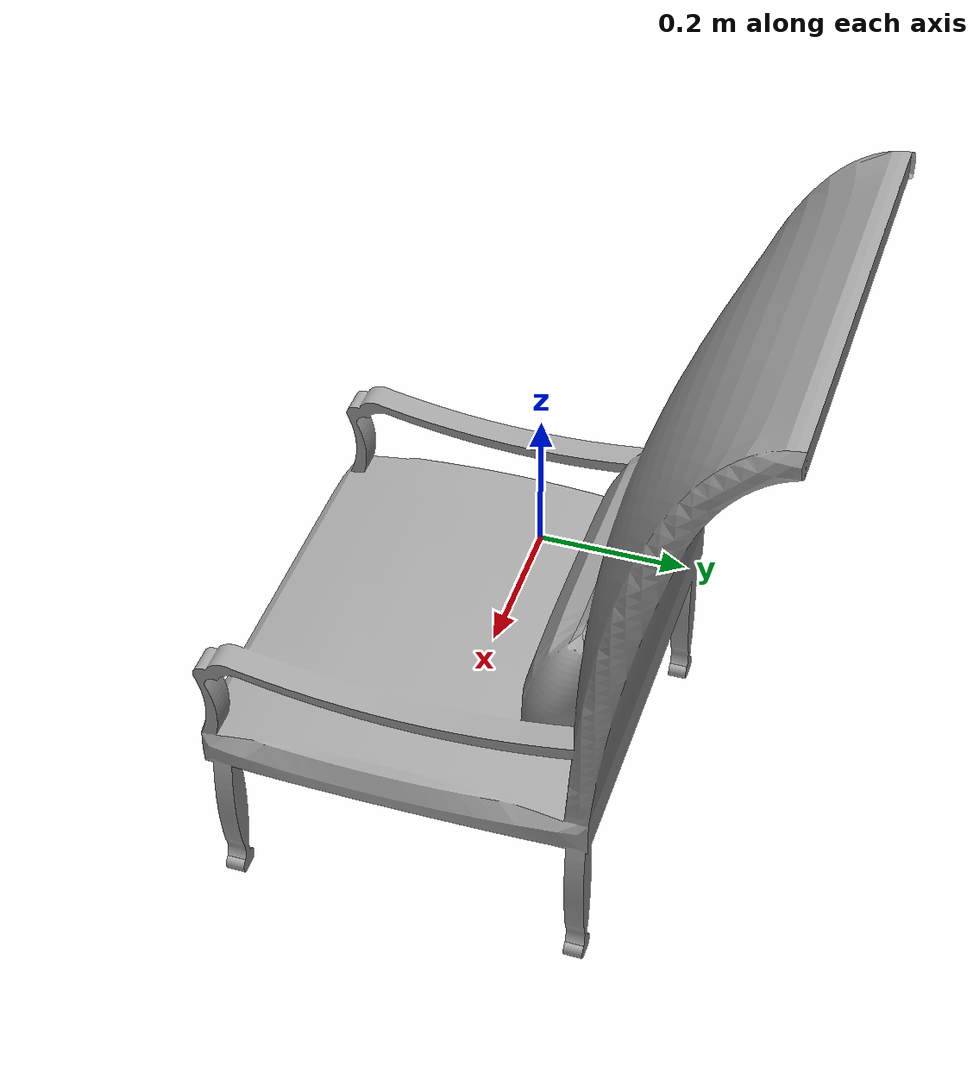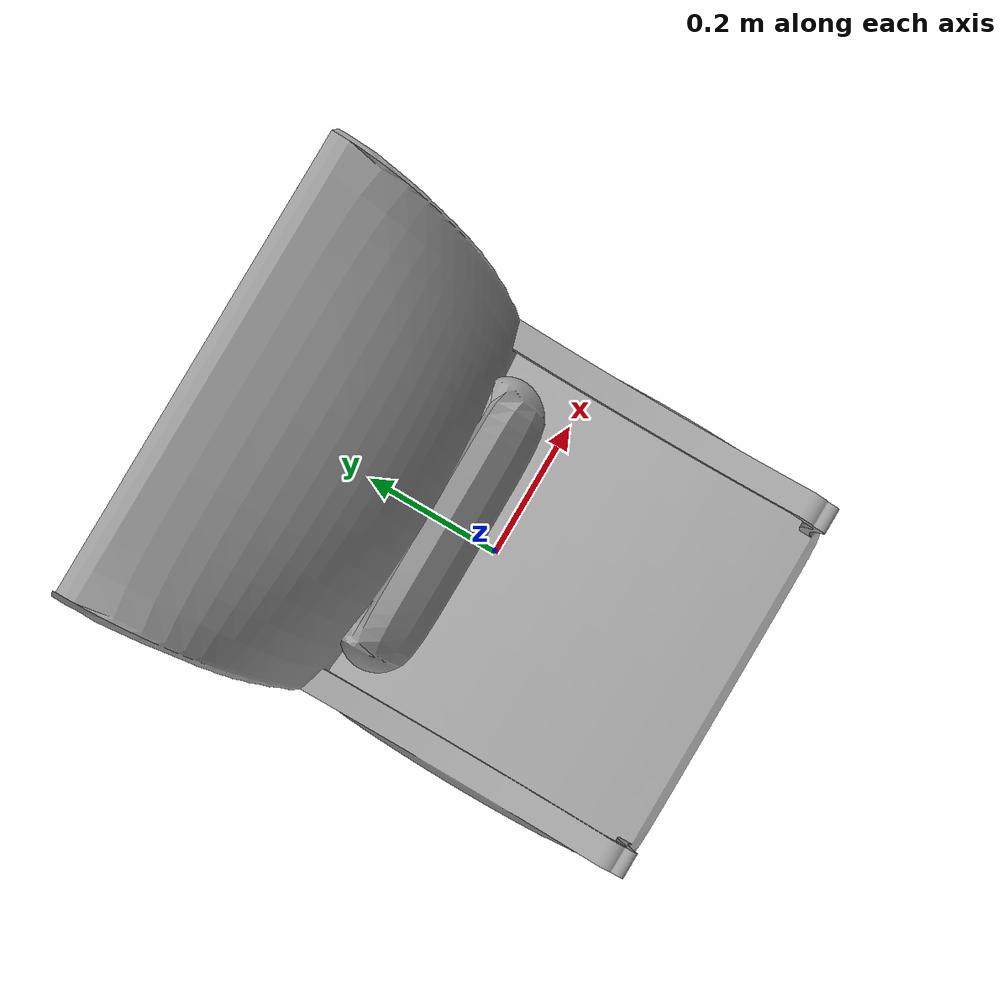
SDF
<?xml version="1.0" ?>
<sdf version="1.5">
  <model name='chair7'>
    <pose>0 0 0 0 0 0</pose>
    <static>1</static>
    <link name='body'>
      <collision name="chair7-coll">
        <pose>0 0 -0.5 0 0 0</pose>
        <geometry>
          <mesh>
            <uri>model://chair7/meshes/chair7.dae</uri>
          </mesh>
        </geometry>
      </collision>
      <visual name='chair7'>
        <cast_shadows>1</cast_shadows>
        <pose>0 0 -0.5 0 0 0</pose>
        <geometry>
          <mesh>
            <uri>model://chair7/meshes/chair7.dae</uri>
          </mesh>
        </geometry>
      </visual>
      <velocity_decay>
        <linear>0</linear>
        <angular>0</angular>
      </velocity_decay>
      <self_collide>0</self_collide>
      <kinematic>0</kinematic>
      <gravity>1</gravity>
    </link>
  </model>

</sdf>
